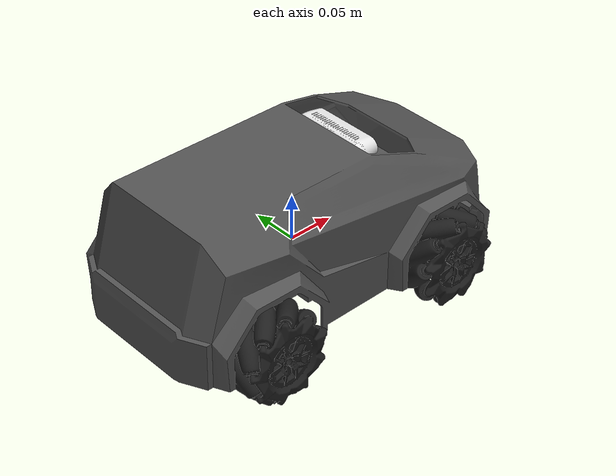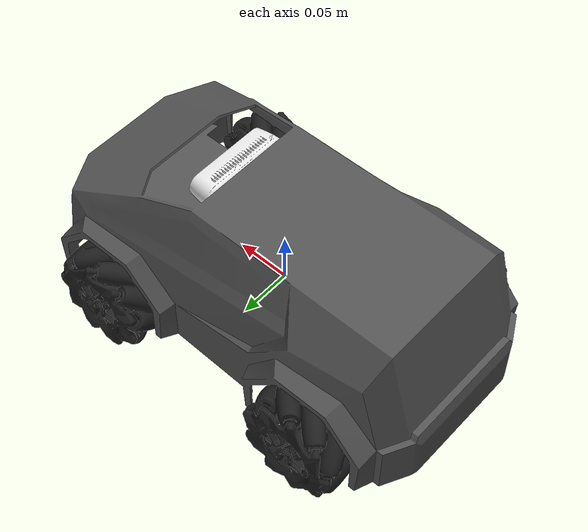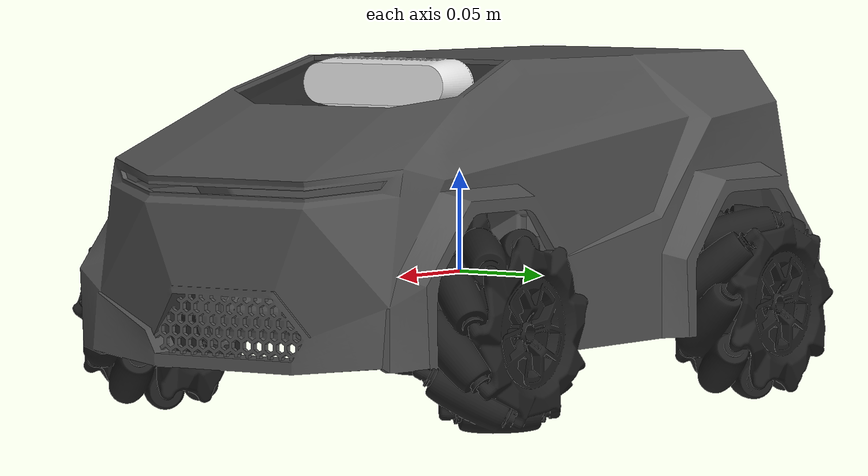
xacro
<?xml version="1.0" ?>
<robot name="ROBOT_URDF_final" xmlns:xacro="http://www.ros.org/wiki/xacro" xmlns:gz="http://gazebosim.org/schema">

<xacro:include filename="$(find ROBOT_URDF_final_description)/urdf/materials.xacro" />
<xacro:include filename="$(find ROBOT_URDF_final_description)/urdf/ROBOT_URDF_final.ros2control" />
<xacro:include filename="$(find ROBOT_URDF_final_description)/urdf/ROBOT_URDF_final.gazebo" />

<!-- BASE LINK (Khung xe màu xám kim loại) -->
<link name="base_link">
  <inertial>
    <origin xyz="-0.004680971074212348 0.001013778159962492 0.022702840329693212" rpy="0 0 0"/>
    <mass value="2"/>
    <inertia ixx="0.032621" iyy="0.088559" izz="0.100296" ixy="-2.7e-05" iyz="0.000162" ixz="0.003248"/>
  </inertial>
  <visual>
    <origin xyz="0 0 0" rpy="0 0 0"/>
    <geometry>
      <mesh filename="file://$(find ROBOT_URDF_final_description)/meshes/base_link.stl" scale="0.001 0.001 0.001"/>
    </geometry>
    <material name="chassis_dark_grey"/>
  </visual>
  <collision name="s3_d3_base_contact_collision">
    <origin xyz="0 0 0" rpy="0 0 0"/>
    <geometry>
      <box size="0.4 0.28 0.10"/>
    </geometry>
  </collision>
</link>

<!-- WHEEL LEFT FRONT (Bánh xe màu đen) -->
<link name="Wheel_LF_1">
  <inertial>
    <origin xyz="7.730831169672214e-09 0.020486354622651984 7.0657725812633965e-06" rpy="0 0 0"/>
    <mass value="0.15"/>
    <inertia ixx="0.000111" iyy="0.000179" izz="0.000111" ixy="-0.0" iyz="0.0" ixz="-0.0"/>
  </inertial>
  <visual>
    <origin xyz="-0.108 -0.11109 0.0175" rpy="0 0 0"/>
    <geometry>
      <mesh filename="file://$(find ROBOT_URDF_final_description)/meshes/Wheel_LF_1.stl" scale="0.001 0.001 0.001"/>
    </geometry>
    <material name="black"/>
  </visual>
  <collision>
    <!-- Lật ngang hình trụ 90 độ (1.5708 radian) quanh trục X -->
    <origin xyz="0 0 0" rpy="1.5708 0 0"/>
    <geometry>
      <!-- Bán kính 0.0485m (đường kính 97mm), độ dày 0.04m (4cm) -->
      <cylinder radius="0.0485" length="0.04"/>
    </geometry>
  </collision>
</link>

<!-- WHEEL RIGHT FRONT (Bánh xe màu đen) -->
<link name="Wheel_RF_1">
  <inertial>
    <origin xyz="8.176073262866623e-09 -0.020486352801042898 7.067794141380618e-06" rpy="0 0 0"/>
    <mass value="0.15"/>
    <inertia ixx="0.000111" iyy="0.000179" izz="0.000111" ixy="0.0" iyz="-0.0" ixz="-0.0"/>
  </inertial>
  <visual>
    <origin xyz="-0.108 0.11109 0.0175" rpy="0 0 0"/>
    <geometry>
      <mesh filename="file://$(find ROBOT_URDF_final_description)/meshes/Wheel_RF_1.stl" scale="0.001 0.001 0.001"/>
    </geometry>
    <material name="black"/>
  </visual>
  <collision>
    <!-- Lật ngang hình trụ 90 độ (1.5708 radian) quanh trục X -->
    <origin xyz="0 0 0" rpy="1.5708 0 0"/>
    <geometry>
      <!-- Bán kính 0.0485m (đường kính 97mm), độ dày 0.04m (4cm) -->
      <cylinder radius="0.0485" length="0.04"/>
    </geometry>
  </collision>
</link>

<!-- WHEEL RIGHT BACK (Bánh xe màu đen) -->
<link name="Wheel_RB_1">
  <inertial>
    <origin xyz="-1.1186073178848233e-09 -0.020486363591042916 7.059103033960068e-06" rpy="0 0 0"/>
    <mass value="0.15"/>
    <inertia ixx="0.000111" iyy="0.000179" izz="0.000111" ixy="0.0" iyz="-0.0" ixz="0.0"/>
  </inertial>
  <visual>
    <origin xyz="0.108 0.11109 0.0175" rpy="0 0 0"/>
    <geometry>
      <mesh filename="file://$(find ROBOT_URDF_final_description)/meshes/Wheel_RB_1.stl" scale="0.001 0.001 0.001"/>
    </geometry>
    <material name="black"/>
  </visual>
  <collision>
    <!-- Lật ngang hình trụ 90 độ (1.5708 radian) quanh trục X -->
    <origin xyz="0 0 0" rpy="1.5708 0 0"/>
    <geometry>
      <!-- Bán kính 0.0485m (đường kính 97mm), độ dày 0.04m (4cm) -->
      <cylinder radius="0.0485" length="0.04"/>
    </geometry>
  </collision>
</link>

<!-- WHEEL LEFT BACK (Bánh xe màu đen) -->
<link name="Wheel_LB_1">
  <inertial>
    <origin xyz="-1.5638501049686226e-09 0.02048636176944614 7.061124594778118e-06" rpy="0 0 0"/>
    <mass value="0.15"/>
    <inertia ixx="0.000111" iyy="0.000179" izz="0.000111" ixy="-0.0" iyz="0.0" ixz="0.0"/>
  </inertial>
  <visual>
    <origin xyz="0.108 -0.11109 0.0175" rpy="0 0 0"/>
    <geometry>
      <mesh filename="file://$(find ROBOT_URDF_final_description)/meshes/Wheel_LB_1.stl" scale="0.001 0.001 0.001"/>
    </geometry>
    <material name="black"/>
  </visual>
  <collision>
    <!-- Lật ngang hình trụ 90 độ (1.5708 radian) quanh trục X -->
    <origin xyz="0 0 0" rpy="1.5708 0 0"/>
    <geometry>
      <!-- Bán kính 0.0485m (đường kính 97mm), độ dày 0.04m (4cm) -->
      <cylinder radius="0.0485" length="0.04"/>
    </geometry>
  </collision>
</link>

<!-- CAMERA LINK (Intel RealSense màu trắng) -->
<link name="IntelRealsense_D435_Multibody_1">
  <inertial>
    <origin xyz="0.01195124704164778 -0.0026011079695855525 -6.051171193946492e-05" rpy="0 0 0"/>
    <mass value="0.35"/>
    <inertia ixx="0.000227" iyy="3.2e-05" izz="0.000229" ixy="-1e-06" iyz="-0.0" ixz="-0.0"/>
  </inertial>
  <visual>
    <origin xyz="-0.043208 0.0 -0.095165" rpy="0 0 0"/>
    <geometry>
      <mesh filename="file://$(find ROBOT_URDF_final_description)/meshes/IntelRealsense_D435_Multibody_1.stl" scale="0.001 0.001 0.001"/>
    </geometry>
    <material name="camera_white"/>
  </visual>
  <collision>
    <origin xyz="-0.043208 0.0 -0.095165" rpy="0 0 0"/>
    <geometry>
      <mesh filename="file://$(find ROBOT_URDF_final_description)/meshes/IntelRealsense_D435_Multibody_1.stl" scale="0.001 0.001 0.001"/>
    </geometry>
  </collision>
</link>

<!-- Owner-accepted CAD-nominal packet WP04-WP05-YDLIDAR-X3PRO-CAD-EXTRINSIC-V1. -->
<!-- Packet SHA-256: 40fe44cb3647376b3b1f793761091e101051d7e141e4687e67e2f03632e430de. -->
<!-- Hardware-as-built verification remains pending. -->
<link name="lidar_frame"/>

<!-- JOINTS -->
<joint name="Wheel_LF_Joint" type="continuous">
  <origin xyz="0.108 0.11109 -0.0175" rpy="0 0 0"/>
  <parent link="base_link"/>
  <child link="Wheel_LF_1"/>
  <axis xyz="0.0 1.0 0.0"/>
</joint>

<joint name="Wheel_RF_Joint" type="continuous">
  <origin xyz="0.108 -0.11109 -0.0175" rpy="0 0 0"/>
  <parent link="base_link"/>
  <child link="Wheel_RF_1"/>
  <axis xyz="0.0 1.0 0.0"/>
</joint>

<joint name="Wheel_RB_Joint" type="continuous">
  <origin xyz="-0.108 -0.11109 -0.0175" rpy="0 0 0"/>
  <parent link="base_link"/>
  <child link="Wheel_RB_1"/>
  <axis xyz="0.0 1.0 0.0"/>
</joint>

<joint name="Wheel_LB_Joint" type="continuous">
  <origin xyz="-0.108 0.11109 -0.0175" rpy="0 0 0"/>
  <parent link="base_link"/>
  <child link="Wheel_LB_1"/>
  <axis xyz="0.0 1.0 0.0"/>
</joint>

<joint name="Camera_Joint" type="fixed">
  <origin xyz="0.043208 0.0 0.095165" rpy="0 0 0"/>
  <parent link="base_link"/>
  <child link="IntelRealsense_D435_Multibody_1"/>
</joint>

<joint name="base_link_to_lidar_frame" type="fixed">
  <origin xyz="-0.031765 0 0.140" rpy="0 0 0"/>
  <parent link="base_link"/>
  <child link="lidar_frame"/>
</joint>

</robot>

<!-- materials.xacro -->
<robot name="ROBOT_URDF_final" xmlns:xacro="http://www.ros.org/wiki/xacro" >

<!-- Màu xám kim loại đậm (Khung xe base_link) -->
<material name="chassis_dark_grey">
  <color rgba="0.32 0.32 0.32 1.0"/>
</material>

<!-- Màu đen tuyền (4 Bánh xe Mecanum & Cụm Lidar) -->
<material name="black">
  <color rgba="0.12 0.12 0.12 1.0"/>
</material>

<!-- Màu trắng sữa (Thân Camera Intel RealSense D435) -->
<material name="camera_white">
  <color rgba="0.90 0.90 0.90 1.0"/>
</material>

<!-- Màu bạc sáng -->
<material name="silver">
  <color rgba="0.75 0.75 0.75 1.0"/>
</material>

</robot>

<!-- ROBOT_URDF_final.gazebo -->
<robot name="ROBOT_URDF_final" xmlns:xacro="http://www.ros.org/wiki/xacro" xmlns:gz="http://gazebosim.org/schema">

<xacro:property name="body_color" value="Gazebo/Silver" />

<!-- ==================== CẤU HÌNH VẬT LÝ BASE LINK ==================== -->
<gazebo reference="base_link">
  <material>${body_color}</material>
  <mu1>0.2</mu1>
  <mu2>0.2</mu2>
  <self_collide>false</self_collide>
  <gravity>true</gravity>
  <sensor type="contact" name="s3_d3_base_contact_sensor">
    <contact>
      <collision>s3_d3_base_contact_collision</collision>
      <topic>/s3_d3/contact/raw</topic>
    </contact>
    <always_on>true</always_on>
  </sensor>
</gazebo>

<!-- ==================== BÁNH XE (MA SÁT BẰNG 0 ĐỂ TRƯỢT) ==================== -->
<gazebo reference="Wheel_LF_1">
  <material>Gazebo/DarkGrey</material>
  <mu1>0.0</mu1>
  <mu2>0.0</mu2>
  <self_collide>false</self_collide>
</gazebo>

<gazebo reference="Wheel_RF_1">
  <material>Gazebo/DarkGrey</material>
  <mu1>0.0</mu1>
  <mu2>0.0</mu2>
  <self_collide>false</self_collide>
</gazebo>

<gazebo reference="Wheel_RB_1">
  <material>Gazebo/DarkGrey</material>
  <mu1>0.0</mu1>
  <mu2>0.0</mu2>
  <self_collide>false</self_collide>
</gazebo>

<gazebo reference="Wheel_LB_1">
  <material>Gazebo/DarkGrey</material>
  <mu1>0.0</mu1>
  <mu2>0.0</mu2>
  <self_collide>false</self_collide>
</gazebo>

<!-- ==================== HỆ THỐNG KẾT HỢP: VELOCITY + MECANUM ==================== -->
<gazebo>
  <!-- 1. VELOCITY CONTROL: Lo việc di chuyển khung xe tịnh tiến -->
  <plugin
    filename="gz-sim-velocity-control-system"
    name="gz::sim::systems::VelocityControl">
    <topic>/cmd_vel</topic>
  </plugin>

  <!-- 2. MECANUM DRIVE: Lo việc quay 4 bánh xe và phát Odom + TF cho SLAM -->
  <plugin
    filename="gz-sim-mecanum-drive-system"
    name="gz::sim::systems::MecanumDrive">
    <front_left_joint>Wheel_LF_Joint</front_left_joint>
    <front_right_joint>Wheel_RF_Joint</front_right_joint>
    <back_left_joint>Wheel_LB_Joint</back_left_joint>
    <back_right_joint>Wheel_RB_Joint</back_right_joint>

    <wheel_separation>0.22218</wheel_separation>
    <wheelbase>0.216</wheelbase>
    <wheel_radius>0.0485</wheel_radius>

    <topic>/cmd_vel</topic>
    <odom_topic>/odom</odom_topic>
    <tf_topic>/tf</tf_topic>
    <frame_id>odom</frame_id>
    <child_frame_id>base_link</child_frame_id>
  </plugin>

  <plugin
    filename="gz-sim-odometry-publisher-system"
    name="gz::sim::systems::OdometryPublisher">
    <odom_frame>world</odom_frame>
    <robot_base_frame>base_link</robot_base_frame>
    <odom_publish_frequency>50</odom_publish_frequency>
    <odom_topic>/ground_truth/odom</odom_topic>
    <dimensions>2</dimensions>
    <gaussian_noise>0.0</gaussian_noise>
  </plugin>

  <!-- 4. JOINT STATE PUBLISHER: Bắt buộc để gửi trạng thái bánh xe sang RViz2 -->
  <plugin
    filename="gz-sim-joint-state-publisher-system"
    name="gz::sim::systems::JointStatePublisher">
    <topic>/joint_states</topic>
  </plugin>
</gazebo>

<!-- ==================== CAMERA (INTEL REALSENSE D435) ==================== -->
<gazebo reference="IntelRealsense_D435_Multibody_1">
  <material>Gazebo/camera_white</material>
  <self_collide>false</self_collide>
  <sensor type="camera" name="realsense_camera">
    <topic>camera/image_raw</topic>
    <update_rate>30</update_rate>
    <camera name="head">
      <horizontal_fov>1.204</horizontal_fov>
      <image>
        <width>640</width>
        <height>480</height>
        <format>R8G8B8</format>
      </image>
      <clip>
        <near>0.05</near>
        <far>8.0</far>
      </clip>
    </camera>
    <always_on>true</always_on>
    <visualize>true</visualize>
  </sensor>
</gazebo>

<!-- No LiDAR sensor/plugin is selected by this CAD-nominal source change. -->
<gazebo reference="Camera_Joint">
  <preserveFixedJoint>true</preserveFixedJoint>
</gazebo>
</robot>
